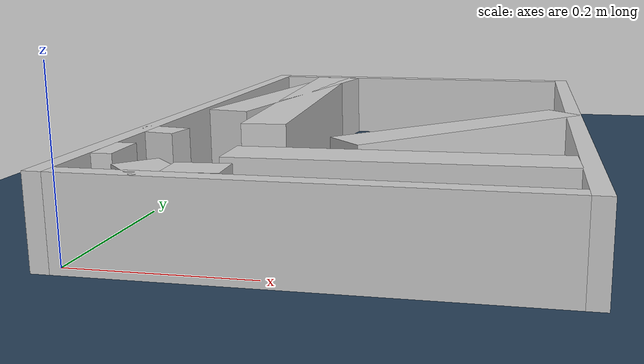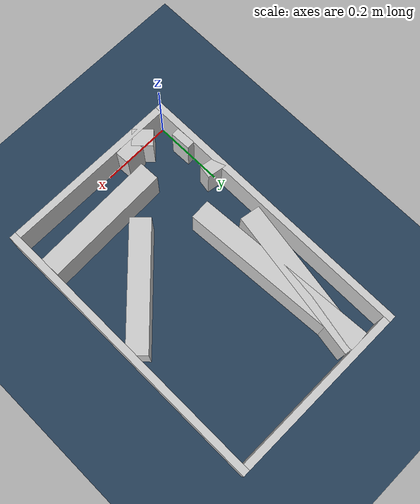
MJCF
<?xml version="1.0" ?>
<mujoco model="generated_real_template">
  <compiler angle="degree"/>
  <option timestep="0.002" integrator="implicitfast" iterations="100" cone="elliptic"/>
  <default>
    <geom density="1"/>
  </default>
  <asset>
    <texture builtin="gradient" height="3072" rgb1="0.3 0.5 0.7" rgb2="0 0 0" type="skybox" width="512"/>
    <texture builtin="checker" height="300" mark="edge" markrgb="0.8 0.8 0.8" name="groundplane" rgb1="0.2 0.3 0.4" rgb2="0.1 0.2 0.3" type="2d" width="300"/>
    <material name="groundplane" reflectance="0.2" texrepeat="5 5" texture="groundplane" texuniform="true"/>
  </asset>
  <worldbody>
    <light dir="0 0 -1" directional="true" pos="0 0 1.5"/>
    <geom name="floor" type="plane" condim="4" friction="0.5 0.005 0.001" material="groundplane" size="0 0 0.05"/>
    <body name="walls">
      <geom name="wall_boundary_left" type="box" condim="4" friction="1.0 0.005 0.0001" rgba="0.8 0.8 0.8 1" pos="-0.010000 0.387500 0.050000" euler="0 0 0.000000" size="0.010000 0.407500 0.050000"/>
      <geom name="wall_boundary_right" type="box" condim="4" friction="1.0 0.005 0.0001" rgba="0.8 0.8 0.8 1" pos="0.500000 0.387500 0.050000" euler="0 0 0.000000" size="0.010000 0.407500 0.050000"/>
      <geom name="wall_boundary_bottom" type="box" condim="4" friction="1.0 0.005 0.0001" rgba="0.8 0.8 0.8 1" pos="0.245000 -0.010000 0.050000" euler="0 0 0.000000" size="0.245000 0.010000 0.050000"/>
      <geom name="wall_boundary_top" type="box" condim="4" friction="1.0 0.005 0.0001" rgba="0.8 0.8 0.8 1" pos="0.245000 0.785000 0.050000" euler="0 0 0.000000" size="0.245000 0.010000 0.050000"/>
      <geom name="wall_inner_1_1" type="box" condim="4" friction="1.0 0.005 0.0001" rgba="0.8 0.8 0.8 1" pos="0.133729 0.020647 0.050000" euler="0 0 93.470802" size="0.020685 0.028500 0.050000"/>
      <geom name="wall_inner_1_2" type="box" condim="4" friction="1.0 0.005 0.0001" rgba="0.8 0.8 0.8 1" pos="0.103511 0.518869 0.050000" euler="0 0 93.470802" size="0.256601 0.028500 0.050000"/>
      <geom name="wall_inner_2_1" type="box" condim="4" friction="1.0 0.005 0.0001" rgba="0.8 0.8 0.8 1" pos="0.365273 0.296270 0.050000" euler="0 0 -135.165746" size="0.175748 0.028500 0.050000"/>
      <geom name="wall_inner_2_2" type="box" condim="4" friction="1.0 0.005 0.0001" rgba="0.8 0.8 0.8 1" pos="0.084249 0.016867 0.050000" euler="0 0 -135.165746" size="0.023623 0.028500 0.050000"/>
      <geom name="wall_inner_3_1" type="box" condim="4" friction="1.0 0.005 0.0001" rgba="0.8 0.8 0.8 1" pos="0.011512 0.093593 0.050000" euler="0 0 1.741936" size="0.011517 0.028500 0.050000"/>
      <geom name="wall_inner_3_2" type="box" condim="4" friction="1.0 0.005 0.0001" rgba="0.8 0.8 0.8 1" pos="0.313271 0.102770 0.050000" euler="0 0 1.741936" size="0.176811 0.028500 0.050000"/>
      <geom name="wall_inner_4_1" type="box" condim="4" friction="1.0 0.005 0.0001" rgba="0.8 0.8 0.8 1" pos="0.071977 0.566797 0.050000" euler="0 0 -99.521506" size="0.211111 0.028500 0.050000"/>
      <geom name="wall_inner_4_2" type="box" condim="4" friction="1.0 0.005 0.0001" rgba="0.8 0.8 0.8 1" pos="0.011129 0.204022 0.050000" euler="0 0 -99.521506" size="0.018260 0.028500 0.050000"/>
    </body>
  </worldbody>
</mujoco>
